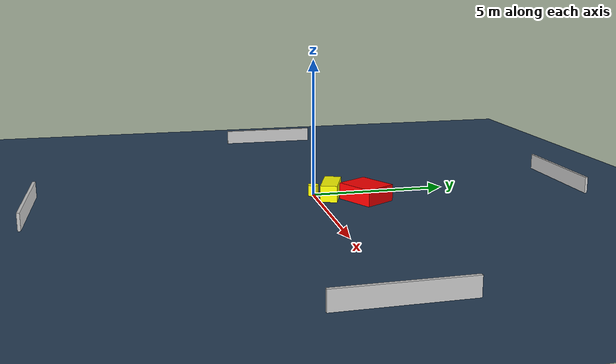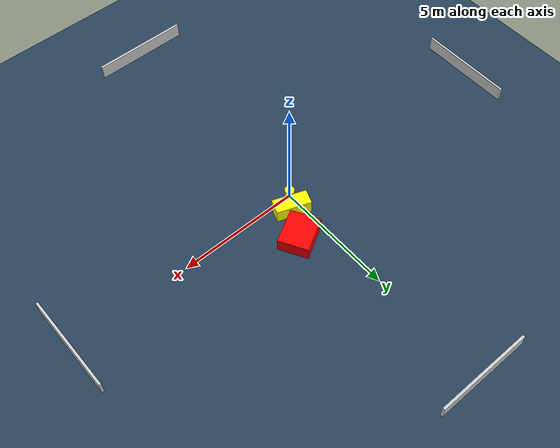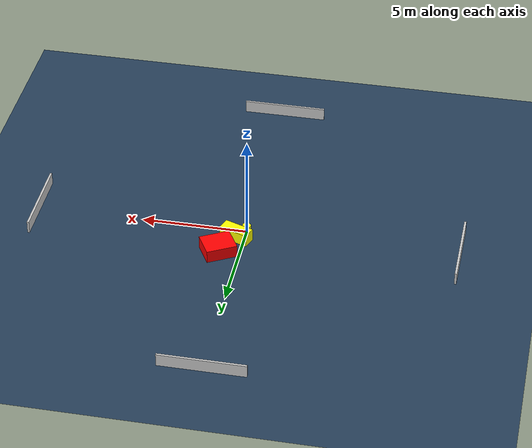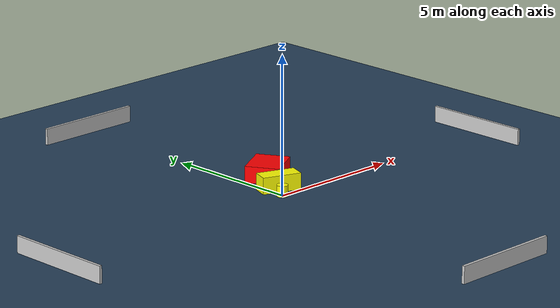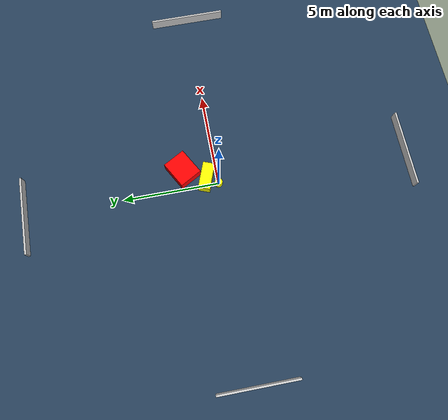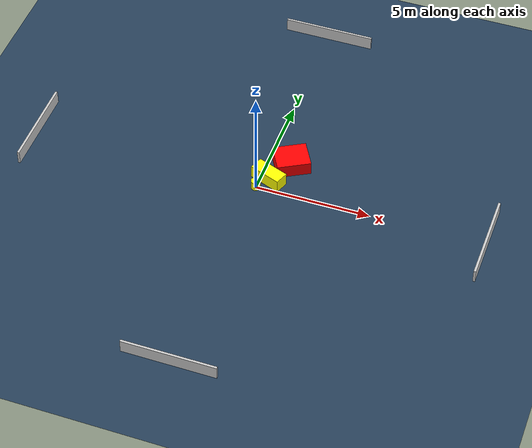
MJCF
<?xml version="1.0" ?>
<mujoco model="generated_environment">
  <option timestep="0.01" integrator="RK4" cone="elliptic"/>
  <default>
    <geom density="1"/>
  </default>
  <asset>
    <texture builtin="gradient" height="3072" name="skybox" rgb1="0.3 0.5 0.7" rgb2="0 0 0" type="skybox" width="512"/>
    <texture builtin="checker" height="300" name="groundplane" rgb1="0.2 0.3 0.4" rgb2="0.1 0.2 0.3" type="2d" width="300"/>
    <material name="groundplane" reflectance="0.2" texrepeat="5 5" texture="groundplane"/>
  </asset>
  <worldbody>
    <light dir="0 0 -1" directional="true" pos="0 0 1.5"/>
    <geom condim="3" friction="0.5 0.005 0.001" material="groundplane" name="floor" pos="0 0 0" size="0 0 0.05" type="plane"/>
    <body name="walls">
      <geom name="wall_1" condim="4" pos="-10.0 0.0 0.3" rgba="0.800000011920929 0.800000011920929 0.800000011920929 1.0" size="0.05 2.0 0.3" type="box"/>
      <geom name="wall_2" condim="4" pos="10.0 0.0 0.3" rgba="0.800000011920929 0.800000011920929 0.800000011920929 1.0" size="0.05 2.0 0.3" type="box"/>
      <geom name="wall_3" condim="4" pos="0.0 -10.0 0.3" rgba="0.800000011920929 0.800000011920929 0.800000011920929 1.0" size="2.0 0.05 0.3" type="box"/>
      <geom name="wall_4" condim="4" pos="0.0 10.0 0.3" rgba="0.800000011920929 0.800000011920929 0.800000011920929 1.0" size="2.0 0.05 0.3" type="box"/>
    </body>
    <body name="robot">
      <joint name="joint_x" type="slide" pos="0 0 0" axis="1 0 0"/>
      <joint name="joint_y" type="slide" pos="0 0 0" axis="0 1 0"/>
      <geom name="robot" type="cylinder" pos="0.0 0.0 0.2" size="0.2 0.2 0.0" mass="5.0" friction="1.0 0.005 0.0001" condim="4" rgba="1.0 1.0 0.0 1.0"/>
    </body>
    <body name="obstacle_1_movable">
      <geom name="obstacle_1_movable" condim="4" pos="0.3855253816855292 0.5707569546099558 0.3" euler="0 0 339.50980507589014" friction="0.0 0.005 0.001" rgba="1.0 1.0 0.0 1.0" size="0.7058877249702218 0.30449286375218004 0.3" type="box" mass="0.1"/>
      <joint type="free"/>
    </body>
    <body name="obstacle_2_static">
      <geom name="obstacle_2_static" condim="4" pos="1.0059193306006353 1.7274230478508206 0.3" euler="0 0 29.50822880529486" friction="0.0 0.005 0.001" rgba="1.0 0.0 0.0 1.0" size="0.7283765410765788 0.61480317359799 0.3" type="box"/>
    </body>
  </worldbody>
  <actuator>
    <motor name="actuator_x" joint="joint_x" gear="1" ctrlrange="-1 1"/>
    <motor name="actuator_y" joint="joint_y" gear="1" ctrlrange="-1 1"/>
  </actuator>
</mujoco>
